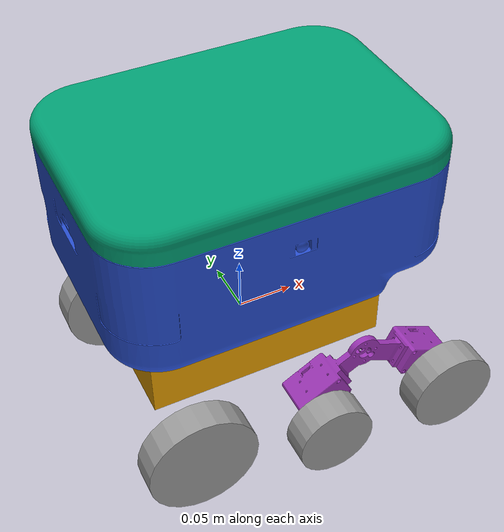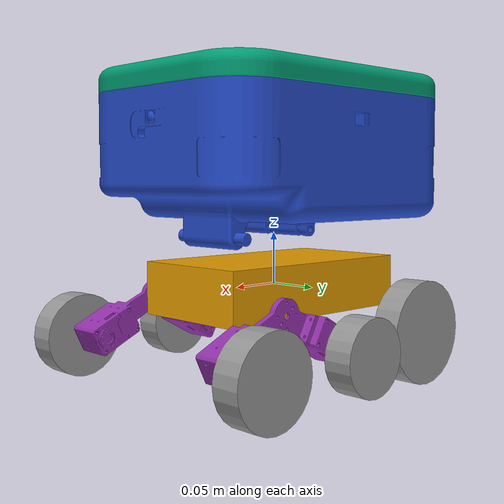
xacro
<?xml version="1.0"?>
<!-- Revolute-Revolute Manipulator -->
<robot name="deepexpress" xmlns:xacro="http://www.ros.org/wiki/xacro">

  <!-- Constants for robot dimensions -->
  <xacro:property name="PI" value="3.1415926535897931"/>

  <!-- BGN - Include -->

  <!-- Import all Gazebo-customization elements, including Gazebo colors -->
  <xacro:include  filename="$(find deepexpress_description)/urdf/deepexpress.gazebo" />
  <!-- Import Rviz colors -->
  <xacro:include filename="$(find deepexpress_description)/urdf/parameters.xacro" />

 <!--origin_rpy="0 0 0" origin_xyz="-0.014 0 0.231" -->

<m_link_mesh_chassis name="chassis"
              origin_rpy="0 0 0" origin_xyz="0 0 0"
              origin_rpy_inertia="0 0 0" origin_xyz_inertia="0 0 0"
              mass="3"
              ixx="0.0099" ixy="-6.2341e-07" ixz="-7.4538e-07"
              iyx="-0.16"  iyy="0.0004" iyz="-0.99"
              izx="0.04"  izy="1.0" izz="0.003"
              meshfile="package://deepexpress_description/meshes/chassis_2.dae"
              meshscale="0.00039 0.00039 0.00039" />

  <m_joint_passive name="chassis_right_bogie" type="revolute"
           axis_xyz="0 1 0"
           origin_rpy="0 0 0" origin_xyz="0.078 -0.09 -0.01315"
           parent="chassis" child="right_bogie"
           limit_e="1" limit_l="${-1.1}" limit_u="${1.1}" limit_v="1.3" />
 <!--
 origin_rpy="0 0 0" origin_xyz="0.078 -0.084 -0.01315" BOGIE 120 CM
 origin_rpy="0 0 0" origin_xyz="0.061 -0.084 -0.01315" BOGIE ORIGINAL-->
  <m_link_mesh name="right_bogie"
              origin_rpy="${PI/2} ${PI/2} ${PI}" origin_xyz="0 0 0"
              origin_rpy_inertia="0 0 0" origin_xyz_inertia="0 0 0"
              mass="3"
              ixx="1.0" ixy="0" ixz="0"
              iyx="0.00"  iyy="0.98" iyz="0.21"
              izx="1"  izy="-0.21" izz="0.98"
              meshfile="package://deepexpress_description/meshes/bogieR2.dae"
              meshscale=" 1 1 1" />

  <m_joint_passive name="chassis_left_bogie" type="revolute"
           axis_xyz="0 1 0"
           origin_rpy="0 0 0" origin_xyz="0.078 0.09 -0.01315"
           parent="chassis" child="left_bogie"
      	   limit_e="1" limit_l="${-1.1}" limit_u="${1.1}" limit_v="1.3" />
	   <!--origin_rpy="0 0 0" origin_xyz="0.061 0.074 -0.01315" BOGIE-->
	   <!--origin_rpy="0 0 0" origin_xyz="0.061 0.09 -0.01315"BOGIE-->
           <!--limit_e="1000" limit_l="${-0.4}" limit_u="${0.4}" limit_v="1.5" 6cm -->
           <!--limit_e="1000" limit_l="${-0.55}" limit_u="${0.55}" limit_v="1.5" 7.5cm -->
	   <!--limit_e="1000" limit_l="${-1.0}" limit_u="${1.0}" limit_v="1.5" 11cm up-->

  <m_link_mesh name="left_bogie"
              origin_rpy="0 ${1.57} ${1.57}" origin_xyz="0 0 0"
              origin_rpy_inertia="0 0 0" origin_xyz_inertia="0 0 0"
              mass="3"
              ixx="1.0" ixy="0" ixz="0"
              iyx="0.00"  iyy="0.98" iyz="0.21"
              izx="1"  izy="-0.21" izz="0.98"
              meshfile="package://deepexpress_description/meshes/bogieL2.dae"
              meshscale="1 1 1" />
<m_joint_active name="wheel_right_front_joint" type="continuous"
           axis_xyz="0 1 0"
           origin_rpy="0 0 0" origin_xyz="0.065 -0.04 -0.036"
           parent="right_bogie" child="wheel_right_front"
            limit_e="1.5" limit_l="${-PI/3}" limit_u="${PI/3}" limit_v="1.5" />
	<!--origin_rpy="0 0 0" origin_xyz="0.055 -0.0253 -0.031"-->

 <m_link_mesh_wheel name="wheel_right_front"
              origin_rpy="0 0 0" origin_xyz="0 0 0"
	      origin_rpy_collision="${PI/2} 0 0" origin_xyz_collision="0 0 0"
              mass="8.5"
              ixx="0.0034" ixy="0" ixz="-0"
              iyx="0.00"  iyy="0.00101" iyz="0.0034"
              izx="0"  izy="0.0" izz="0.0"
	      radius="0.04" length="0.027"
              meshfile="package://deepexpress_description/meshes/wheel.dae"
              meshscale="0.00039 0.00039 0.00039" />

 <m_joint_active name="wheel_left_front_joint" type="continuous"
           axis_xyz="0 1 0"
           origin_rpy="0 0 0" origin_xyz="0.065 0.04 -0.036"
           parent="left_bogie" child="wheel_left_front"
           limit_e="1.5" limit_l="-3.14" limit_u="3.14" limit_v="1.5" />
      <!--origin_rpy="0 0 0" origin_xyz="0.055 0.0253 -0.031"-->
  <m_link_mesh_wheel name="wheel_left_front"
              origin_rpy="0 0 ${PI}" origin_xyz="0 0 0"
	      origin_rpy_collision="${PI/2} 0 0" origin_xyz_collision="0 0 0"
              mass="8.5"
               ixx="0.0034" ixy="0" ixz="-0"
              iyx="0.00"  iyy="0.00101" iyz="0.0034"
              izx="0"  izy="0.0" izz="0.0"
	      radius="0.04" length="0.027"
              meshfile="package://deepexpress_description/meshes/wheel.dae"
              meshscale="0.00039 0.00039 0.00039" />

 <m_joint_active name="wheel_right_middle_joint" type="continuous"
           axis_xyz="0 1 0"
           origin_rpy="0 0 0" origin_xyz="-0.055 -0.04 -0.036"
           parent="right_bogie" child="wheel_right_middle"
           limit_e="1.5" limit_l="${-PI/3}" limit_u="${PI/3}" limit_v="1.5" />
<!-- origin_rpy="0 0 0" origin_xyz="-0.055 -0.0253 -0.031"-->
  <m_link_mesh_wheel name="wheel_right_middle"
              origin_rpy="0 0 0" origin_xyz="0 0 0"
	      origin_rpy_collision="${PI/2} 0 0" origin_xyz_collision="0 0 0"
              mass="3"
               ixx="0.0034" ixy="0" ixz="-0"
              iyx="0.00"  iyy="0.00101" iyz="0.0034"
              izx="0"  izy="0.0" izz="0.0"
	      radius="0.035" length="0.027"
              meshfile="package://deepexpress_description/meshes/wheel.dae"
              meshscale="0.00039 0.00039 0.00039" />
              <!--mass="5" climbing down 7.5cm-->
	      <!--mass="4.85" climbing down 11cm-->

  <m_joint_active name="wheel_left_middle_joint" type="continuous"
           axis_xyz="0 1 0"
	   origin_rpy="0 0 0" origin_xyz="-0.055 0.04 -0.036"
           parent="left_bogie" child="wheel_left_middle"
           limit_e="1.5" limit_l="${-PI/3}" limit_u="${PI/3}" limit_v="1.5" />
<!--origin_rpy="0 0 0" origin_xyz="-0.055 0.0253 -0.031" -->
  <m_link_mesh_wheel name="wheel_left_middle"
              origin_rpy="0 0 ${PI}" origin_xyz="0 0 0"
	      origin_rpy_collision="${PI/2} 0 0" origin_xyz_collision="0 0 0"
              mass="3"
               ixx="0.0034" ixy="0" ixz="-0"
              iyx="0.00"  iyy="0.00101" iyz="0.0034"
              izx="0"  izy="0.0" izz="0.0"
	      radius="0.035" length="0.027"
              meshfile="package://deepexpress_description/meshes/wheel.dae"
              meshscale="0.00039 0.00039 0.00039" />
	      <!--mass="5" climbing down 7.5cm-->
 <m_joint_active name="wheel_left_rear_joint" type="continuous"
           axis_xyz="0 1 0"
           origin_rpy="0 0 0" origin_xyz="-0.090 0.105 -0.045"
           parent="chassis" child="wheel_left_rear"
           limit_e="1.5" limit_l="${-PI/3}" limit_u="${PI/3}" limit_v="1.5" />
 <!--origin_rpy="0 0 0" origin_xyz="-0.095 0.1 -0.045" BOGIE-->
  <m_link_mesh_wheel name="wheel_left_rear"
              origin_rpy="0 0 ${PI}" origin_xyz="0 0 0"
	        origin_rpy_collision="${PI/2} 0 0" origin_xyz_collision="0 0 0"
              mass="3"
               ixx="0.0034" ixy="0" ixz="-0"
              iyx="0.00"  iyy="0.00101" iyz="0.0034"
              izx="0"  izy="0.0" izz="0.0"
	      radius="0.05" length="0.027"
              meshfile="package://deepexpress_description/meshes/wheel.dae"
              meshscale="0.00039 0.00039 0.00039" />

  <m_joint_active name="wheel_right_rear_joint" type="continuous"
           axis_xyz="0 1 0"
           origin_rpy="0 0 0" origin_xyz="-0.090 -0.105 -0.045"
           parent="chassis" child="wheel_right_rear"
           limit_e="1.5" limit_l="${-PI/3}" limit_u="${PI/3}" limit_v="1.5" />
<!--origin_rpy="0 0 0" origin_xyz="-0.095 -0.1 -0.045" BOGIE-->
  <m_link_mesh_wheel name="wheel_right_rear"
              origin_rpy="0 0 0" origin_xyz="0 0 0"
	      origin_rpy_collision="${PI/2} 0 0" origin_xyz_collision="0 0 0"
              mass="3"
               ixx="0.0034" ixy="0" ixz="-0"
              iyx="0.00"  iyy="0.00101" iyz="0.0034"
              izx="0"  izy="0.0" izz="0.0"
	      radius="0.05" length="0.027"
              meshfile="package://deepexpress_description/meshes/wheel.dae"
              meshscale="0.00039 0.00039 0.00039" />

  <m_joint_active name="chassis_box_joint" type="revolute"
           axis_xyz="0 1 0"
           origin_rpy="0 0 0" origin_xyz="0.083 0 0.0485"
           parent="chassis" child="box_bottom"
            limit_e="1000" limit_l="-0.05" limit_u="0.85" limit_v="0.5" />

 <m_link_mesh name="box_bottom"
              origin_rpy="0 0 0" origin_xyz="-0.08 0 0.062"
              origin_rpy_inertia="0 0 0" origin_xyz_inertia="0.035 0 -0.070"
              mass="1"
               ixx="1.0" ixy="-0.04" ixz="0.0"
              iyx="0.0"  iyy="1.0" iyz="-1.0"
              izx="0.04"  izy="1.0" izz="0.0"
              meshfile="package://deepexpress_description/meshes/box_bottom.dae"
              meshscale="0.00039 0.00039 0.00039" />

 <m_joint_passive name="box_bottom_box_top_joint" type="fixed"
           axis_xyz="0 0 0"
           origin_rpy="0 0 ${PI}" origin_xyz="-0.08 0 0.145"
           parent="box_bottom" child="box_top"
           limit_e="1000" limit_l="-0.02" limit_u="3.14" limit_v="1" />

  <m_link_mesh name="box_top"
              origin_rpy="0 0 0" origin_xyz="0 0 0"
              origin_rpy_inertia="0 0 0" origin_xyz_inertia="0 0 0"
              mass="1"
              ixx="1.0" ixy="-0.04" ixz="0.0"
              iyx="0.0"  iyy="1.0" iyz="-1.0"
              izx="0.04"  izy="1.0" izz="0.0"
              meshfile="package://deepexpress_description/meshes/box_top.dae"
              meshscale="0.00039 0.00039 0.00039" />

</robot>

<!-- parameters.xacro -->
<robot xmlns:xacro="http://www.ros.org/wiki/xacro">

  <xacro:macro name="m_joint_passive" params="name type axis_xyz origin_rpy origin_xyz parent child limit_e limit_l limit_u limit_v">
    <joint name="${name}" type="${type}">
      <axis xyz="${axis_xyz}" />
      <limit effort="${limit_e}" lower="${limit_l}" upper="${limit_u}" velocity="${limit_v}" />
      <origin rpy="${origin_rpy}" xyz="${origin_xyz}" />
      <parent link="${parent}" />
      <child link="${child}" />
    </joint>
  </xacro:macro>

 <xacro:macro name="m_joint_active" params="name type axis_xyz origin_rpy origin_xyz parent child limit_e limit_l limit_u limit_v">
    <joint name="${name}" type="${type}">
      <axis xyz="${axis_xyz}" />
      <limit effort="${limit_e}" lower="${limit_l}" upper="${limit_u}" velocity="${limit_v}" />
      <origin rpy="${origin_rpy}" xyz="${origin_xyz}" />
      <parent link="${parent}" />
      <child link="${child}" />

    </joint>
    <transmission name="trans_${name}">
      <type>transmission_interface/SimpleTransmission</type>
      <joint name="${name}">
        <hardwareInterface>hardware_interface/EffortJointInterface</hardwareInterface>
      </joint>
      <actuator name="motor_${name}">
        <hardwareInterface>hardware_interface/EffortJointInterface</hardwareInterface>

      </actuator>
    </transmission>
  </xacro:macro>

  <xacro:macro name="m_link_cylinder" params="name origin_xyz origin_rpy radius length mass ixx ixy ixz iyy iyz izz">
    <link name="${name}">
      <inertial>
        <mass value="${mass}" />
        <origin rpy="${origin_rpy}" xyz="${origin_xyz}" />
        <inertia ixx="${ixx}" ixy="${ixy}" ixz="${ixz}" iyy="${iyy}" iyz="${iyz}" izz="${izz}" />
      </inertial>
      <collision>
        <origin rpy="${origin_rpy}" xyz="${origin_xyz}" />
        <geometry>
          <cylinder radius="${radius}" length="${length}" />
        </geometry>
      </collision>
      <visual>
        <origin rpy="${origin_rpy}" xyz="${origin_xyz}" />
        <geometry>
          <cylinder radius="${radius}" length="${length}" />
        </geometry>
      </visual>
    </link>
  </xacro:macro>

  <xacro:macro name="m_link_box" params="name origin_xyz origin_rpy size mass ixx ixy ixz iyy iyz izz">
    <link name="${name}">
      <inertial>
        <mass value="${mass}" />
        <origin rpy="${origin_rpy}" xyz="${origin_xyz}" />
        <inertia ixx="${ixx}" ixy="${ixy}" ixz="${ixz}" iyy="${iyy}" iyz="${iyz}" izz="${izz}" />
      </inertial>
      <collision>
        <origin rpy="${origin_rpy}" xyz="${origin_xyz}" />
        <geometry>
          <box size="${size}" />
        </geometry>
      </collision>
      <visual>
        <origin rpy="${origin_rpy}" xyz="${origin_xyz}" />
        <geometry>
          <box size="${size}" />
        </geometry>
      </visual>
    </link>
  </xacro:macro>

  <xacro:macro name="m_link_mesh" params="name origin_xyz origin_rpy origin_xyz_inertia origin_rpy_inertia meshfile meshscale mass ixx ixy ixz iyx iyy iyz izx izy izz">
    <link name="${name}">
      <inertial>
        <mass value="${mass}" />
        <origin rpy="${origin_rpy_inertia}" xyz="${origin_xyz_inertia}" />
        <inertia ixx="${ixx}" ixy="${ixy}" ixz="${ixz}" iyx="${ixy}" iyy="${iyy}" iyz="${iyz}" izx="${izx}" izy="${izy}" izz="${izz}" />
      </inertial>
      <collision>
        <origin rpy="${origin_rpy}" xyz="${origin_xyz}" />
        <geometry>
          <mesh filename="${meshfile}" scale="${meshscale}"/>
        </geometry>
      </collision>
      <visual>
        <origin rpy="${origin_rpy}" xyz="${origin_xyz}" />
        <geometry>
          <mesh filename="${meshfile}" scale="${meshscale}"/>
        </geometry>
      </visual>
    </link>
  </xacro:macro>

  <xacro:macro name="m_link_mesh_wheel" params="name origin_xyz origin_rpy origin_xyz_collision origin_rpy_collision meshfile meshscale mass ixx ixy ixz iyx iyy iyz izx izy izz radius length">
    <link name="${name}">
      <inertial>
        <mass value="${mass}" />
        <origin rpy="${origin_rpy_collision}" xyz="${origin_xyz_collision}" />
        <inertia ixx="${ixx}" ixy="${ixy}" ixz="${ixz}" iyx="${ixy}" iyy="${iyy}" iyz="${iyz}" izx="${izx}" izy="${izy}" izz="${izz}" />
      </inertial>
      <collision>
       <origin rpy="${origin_rpy_collision}" xyz="${origin_xyz_collision}" />
      <geometry>
       <cylinder radius="${radius}" length="${length}"/>
      </geometry>
      </collision>
  	 <visual>
    <origin rpy="${origin_rpy_collision}" xyz="${origin_xyz_collision}" />
      <geometry>
       <cylinder radius="${radius}" length="${length}"/>
      </geometry>
      </visual>
    </link>
  </xacro:macro>

  <xacro:macro name="m_link_mesh_chassis" params="name origin_xyz origin_rpy origin_xyz_inertia origin_rpy_inertia meshfile meshscale mass ixx ixy ixz iyx iyy iyz izx izy izz">
    <link name="${name}">
      <inertial>
        <mass value="${mass}" />
        <origin rpy="${origin_rpy_inertia}" xyz="${origin_xyz_inertia}" />
        <inertia ixx="${ixx}" ixy="${ixy}" ixz="${ixz}" iyx="${ixy}" iyy="${iyy}" iyz="${iyz}" izx="${izx}" izy="${izy}" izz="${izz}" />
      </inertial>
      <collision>
        <origin rpy="${origin_rpy}" xyz="${origin_xyz}" />
        <geometry>
          <box size="0.22 0.12 0.05" />
        </geometry>
      </collision>
      <visual>
        <origin rpy="${origin_rpy}" xyz="${origin_xyz}" />
        <geometry>
		<box size="0.22 0.12 0.05" />

        </geometry>
      </visual>
    </link>
  </xacro:macro>

</robot>
